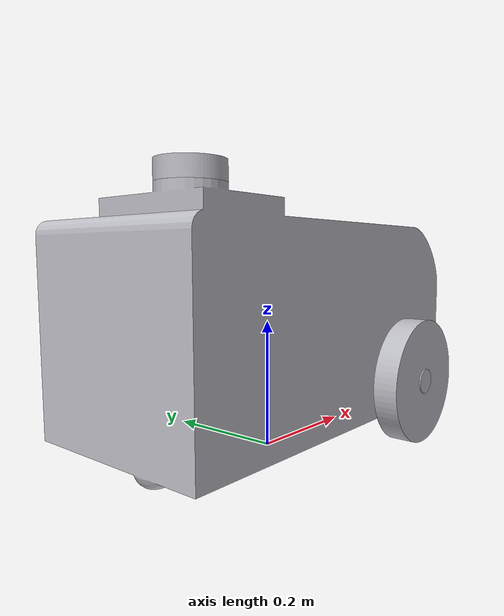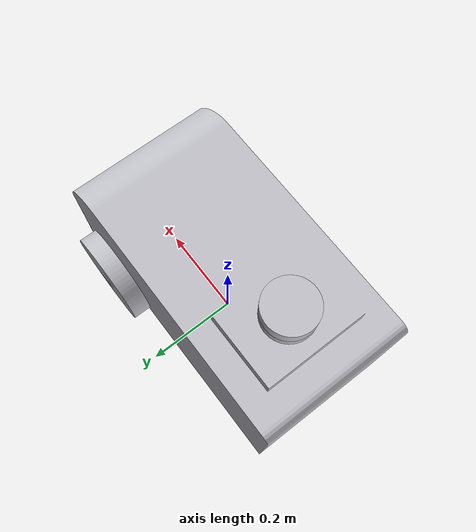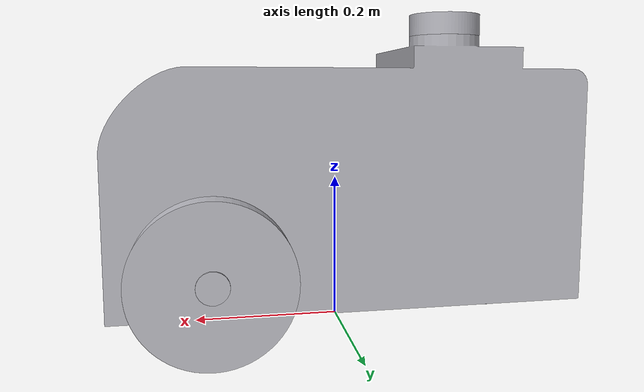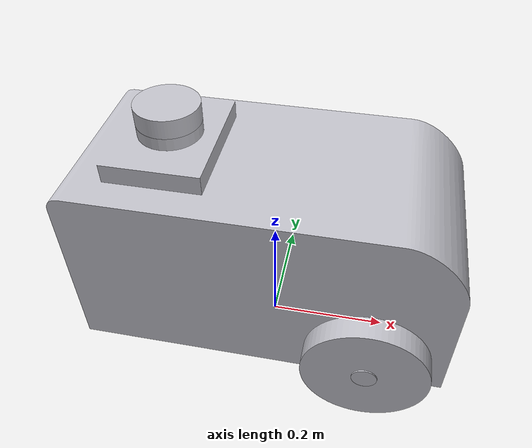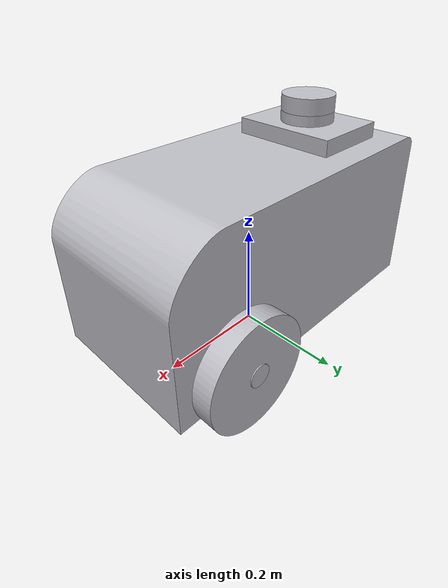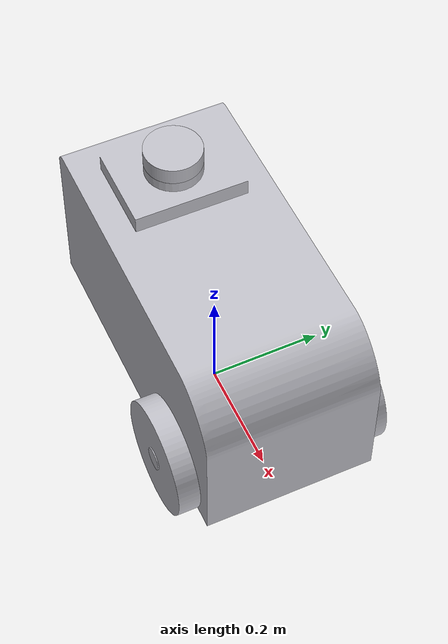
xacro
<?xml version="1.0" ?>
<robot name="demo_rover" xmlns:xacro="http://www.ros.org/wiki/xacro">

<xacro:include filename="$(find demo_rover_description)/urdf/materials.xacro" />
<xacro:include filename="$(find demo_rover_description)/urdf/demo_rover.trans" />
<xacro:include filename="$(find demo_rover_description)/urdf/demo_rover.gazebo" />
<link name="base_link">
  <inertial>
    <origin xyz="-0.007191708041909651 8.161422487031354e-08 0.20081266463163167" rpy="0 0 0"/>
    <mass value="57.70954292234465"/>
    <inertia ixx="0.880788" iyy="2.138926" izz="2.116356" ixy="-1e-06" iyz="-1e-06" ixz="0.055017"/>
  </inertial>
  <visual>
    <origin xyz="0 0 0" rpy="0 0 0"/>
    <geometry>
      <mesh filename="package://demo_rover_description/meshes/base_link.stl" scale="0.001 0.001 0.001"/>
    </geometry>
    <material name="silver"/>
  </visual>
  <collision>
    <origin xyz="0 0 0" rpy="0 0 0"/>
    <geometry>
      <mesh filename="package://demo_rover_description/meshes/base_link.stl" scale="0.001 0.001 0.001"/>
    </geometry>
  </collision>
</link>

<link name="lidar_1">
  <inertial>
    <origin xyz="-2.7755575615628914e-17 -9.650038500203382e-18 0.014999999999999958" rpy="0 0 0"/>
    <mass value="0.3251548396465435"/>
    <inertia ixx="0.000228" iyy="0.000228" izz="0.000406" ixy="-0.0" iyz="0.0" ixz="-0.0"/>
  </inertial>
  <visual>
    <origin xyz="0.16 0.0 -0.4" rpy="0 0 0"/>
    <geometry>
      <mesh filename="package://demo_rover_description/meshes/lidar_1.stl" scale="0.001 0.001 0.001"/>
    </geometry>
    <material name="silver"/>
  </visual>
  <collision>
    <origin xyz="0.16 0.0 -0.4" rpy="0 0 0"/>
    <geometry>
      <mesh filename="package://demo_rover_description/meshes/lidar_1.stl" scale="0.001 0.001 0.001"/>
    </geometry>
  </collision>
</link>

<link name="left_1">
  <inertial>
    <origin xyz="-8.712475185745916e-14 -0.019000000000000017 -4.163336342344337e-17" rpy="0 0 0"/>
    <mass value="1.2148161800313277"/>
    <inertia ixx="0.003305" iyy="0.006317" izz="0.003305" ixy="-0.0" iyz="0.0" ixz="-0.0"/>
  </inertial>
  <visual>
    <origin xyz="-0.175 0.15 -0.1" rpy="0 0 0"/>
    <geometry>
      <mesh filename="package://demo_rover_description/meshes/left_1.stl" scale="0.001 0.001 0.001"/>
    </geometry>
    <material name="silver"/>
  </visual>
  <collision>
    <origin xyz="-0.175 0.15 -0.1" rpy="0 0 0"/>
    <geometry>
      <mesh filename="package://demo_rover_description/meshes/left_1.stl" scale="0.001 0.001 0.001"/>
    </geometry>
  </collision>
</link>

<link name="right_1">
  <inertial>
    <origin xyz="-8.712475185745916e-14 0.018999999999999934 -2.7755575615628914e-17" rpy="0 0 0"/>
    <mass value="1.2148161800313277"/>
    <inertia ixx="0.003305" iyy="0.006317" izz="0.003305" ixy="-0.0" iyz="0.0" ixz="0.0"/>
  </inertial>
  <visual>
    <origin xyz="-0.175 -0.15 -0.1" rpy="0 0 0"/>
    <geometry>
      <mesh filename="package://demo_rover_description/meshes/right_1.stl" scale="0.001 0.001 0.001"/>
    </geometry>
    <material name="silver"/>
  </visual>
  <collision>
    <origin xyz="-0.175 -0.15 -0.1" rpy="0 0 0"/>
    <geometry>
      <mesh filename="package://demo_rover_description/meshes/right_1.stl" scale="0.001 0.001 0.001"/>
    </geometry>
  </collision>
</link>

<joint name="Rigid 10" type="fixed">
  <origin xyz="-0.16 0.0 0.4" rpy="0 0 0"/>
  <parent link="base_link"/>
  <child link="lidar_1"/>
</joint>

<joint name="Revolute 11" type="continuous">
  <origin xyz="0.175 -0.15 0.1" rpy="0 0 0"/>
  <parent link="base_link"/>
  <child link="left_1"/>
  <axis xyz="0.0 1.0 0.0"/>
</joint>

<joint name="Revolute 12" type="continuous">
  <origin xyz="0.175 0.15 0.1" rpy="0 0 0"/>
  <parent link="base_link"/>
  <child link="right_1"/>
  <axis xyz="0.0 -1.0 0.0"/>
</joint>

</robot>

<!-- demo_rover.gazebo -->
<robot name="demo_rover" xmlns:xacro="http://www.ros.org/wiki/xacro" >

<xacro:property name="body_color" value="Gazebo/Silver" />

<gazebo>
  <plugin name="control" filename="libgazebo_ros_control.so"/>
</gazebo>
<gazebo reference="base_link">
  <material>${body_color}</material>
  <mu1>0.2</mu1>
  <mu2>0.2</mu2>
  <selfCollide>true</selfCollide>
  <gravity>true</gravity>
</gazebo>

<gazebo reference="lidar_1">
  <material>${body_color}</material>
  <mu1>0.2</mu1>
  <mu2>0.2</mu2>
  <selfCollide>true</selfCollide>
</gazebo>

<gazebo reference="left_1">
  <material>${body_color}</material>
  <mu1>0.2</mu1>
  <mu2>0.2</mu2>
  <selfCollide>true</selfCollide>
</gazebo>

<gazebo reference="right_1">
  <material>${body_color}</material>
  <mu1>0.2</mu1>
  <mu2>0.2</mu2>
  <selfCollide>true</selfCollide>
</gazebo>

</robot>
